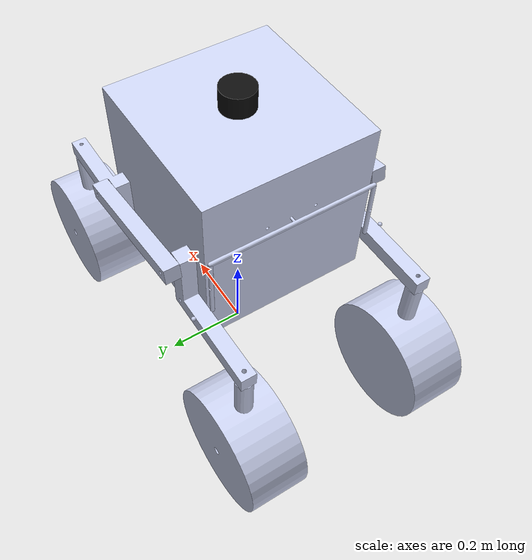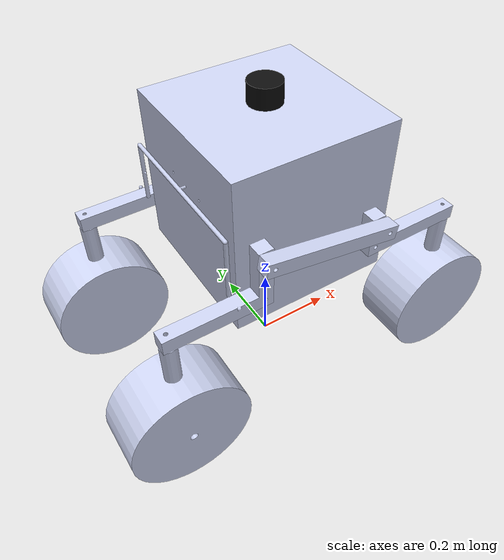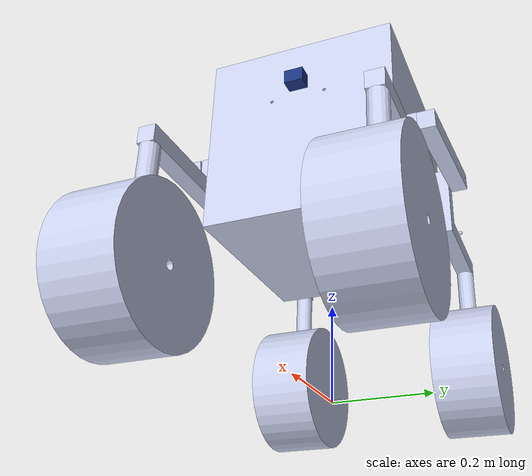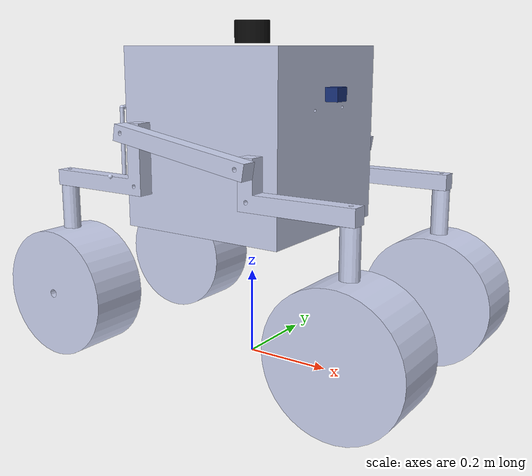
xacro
<?xml version="1.0"?>
<robot name="rover" xmlns:xacro="http://www.ros.org/wiki/xacro">

  <xacro:arg name="sim"            default="harmonic"/>
  <xacro:arg name="mass_scale"     default="1.0"/>
  <xacro:arg name="mesh_collision" default="false"/>
  <xacro:arg name="ros2_control"   default="true"/>
  <xacro:arg name="controllers_file" default="$(find rover_gazebo)/config/controllers.yaml"/>
  <xacro:arg name="suspension"     default="torque"/>

  <xacro:property name="sim"            value="$(arg sim)"/>
  <xacro:property name="mass_scale"     value="$(arg mass_scale)"/>
  <xacro:property name="mesh_collision" value="$(arg mesh_collision)"/>
  <xacro:property name="suspension"     value="$(arg suspension)"/>

  <!-- Mesh URI.                                                         -->
  <!-- Absolute, and deliberately not package://. This model is spawned   -->
  <!-- from a string, not a file: rover_sim.launch.py runs                -->
  <!-- 'ros_gz_sim create -topic robot_description'. sdformat rewrites    -->
  <!-- package:// to model:// and then has no file to resolve it against, -->
  <!-- so the raw model:// URI reaches the renderer, which silently draws -->
  <!-- nothing. See doc/GAZEBO_VISUALS.md.                                -->
  <!-- An absolute file:// URI needs no resolution at all. xacro expands  -->
  <!-- $(find rover_gazebo) on the machine that launches, so this stays   -->
  <!-- correct per machine. resource_retriever reads it, so RViz is       -->
  <!-- unaffected.                                                       -->
  <xacro:property name="mesh_uri" value="file://$(find rover_gazebo)/meshes"/>

  <!-- Frame fix.                                                        -->
  <!-- The exported chassis frame has X pointing backwards, Y up and Z    -->
  <!-- to the left. ROS wants X forward, Y left, Z up. The rotation that  -->
  <!-- takes one to the other is a quarter turn about X followed by a     -->
  <!-- half turn about Z, which is the rpy on chassis_mount below.        -->
  <!-- Both joints are fixed, so sdformat folds all three links into one  -->
  <!-- body and the simulation pays nothing for them.                    -->
  <link name="base_footprint"/>
  <link name="base_link"/>

  <joint name="base_joint" type="fixed">
    <parent link="base_footprint"/>
    <child  link="base_link"/>
    <!-- ground sits 0.7225 m below the chassis origin; see tools/derive_ratios.py -->
    <origin xyz="0 0 0.7225" rpy="0 0 0"/>
  </joint>

  <joint name="chassis_mount" type="fixed">
    <parent link="base_link"/>
    <child  link="chassis_link"/>
    <origin xyz="0 0 0" rpy="1.5707963267948966 0 3.141592653589793"/>
  </joint>

  <xacro:include filename="$(find rover_gazebo)/urdf/rover_body.xacro"/>
  <xacro:include filename="$(find rover_gazebo)/urdf/rover_gazebo.xacro"/>
  <xacro:include filename="$(find rover_gazebo)/urdf/rover_sensors.xacro"/>

  <xacro:if value="${'$(arg ros2_control)' in ['true', 'True', '1']}">
    <xacro:include filename="$(find rover_gazebo)/urdf/rover_ros2_control.xacro"/>
  </xacro:if>

</robot>

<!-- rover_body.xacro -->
<robot xmlns:xacro="http://www.ros.org/wiki/xacro">

  <material name="rover_grey"><color rgba="0.792 0.820 0.933 1"/></material>

  <link name="chassis_link">
    <inertial>
      <origin xyz="-8.627494554e-07 -0.1999353544 7.395065562e-07" rpy="0 0 0"/>
      <mass value="${63.9060978 * mass_scale}"/>
      <inertia
        ixx="${1.704947106 * mass_scale}" ixy="${3.635342536e-06 * mass_scale}" ixz="${-4.07726366e-11 * mass_scale}"
        iyy="${1.703889861 * mass_scale}" iyz="${-3.271519518e-06 * mass_scale}" izz="${1.704053183 * mass_scale}"/>
    </inertial>
    <visual>
      <origin xyz="0 0 0" rpy="0 0 0"/>
      <geometry><mesh filename="${mesh_uri}/base_link.STL"/></geometry>
      <material name="rover_grey"/>
    </visual>
    <!-- the chassis STL is exactly a 0.4 m cube -->
    <collision>
      <origin xyz="0 -0.2 0" rpy="0 0 0"/>
      <geometry><box size="0.4 0.4 0.4"/></geometry>
    </collision>
  </link>

  <link name="FLS">
    <inertial>
      <origin xyz="-0.0859227859 0.009426366769 -0.018" rpy="0 0 0"/>
      <mass value="${0.4214786598 * mass_scale}"/>
      <inertia
        ixx="${0.0003233431638 * mass_scale}" ixy="${-0.000423851259 * mass_scale}" ixz="${1.103954353e-19 * mass_scale}"
        iyy="${0.002771800705 * mass_scale}" iyz="${-1.512944701e-19 * mass_scale}" izz="${0.003003529096 * mass_scale}"/>
    </inertial>
    <visual>
      <origin xyz="0 0 0" rpy="0 0 0"/>
      <geometry><mesh filename="${mesh_uri}/FLS.STL"/></geometry>
      <material name="rover_grey"/>
    </visual>
    <xacro:if value="${mesh_collision}">
      <collision>
        <origin xyz="0 0 0" rpy="0 0 0"/>
        <geometry><mesh filename="${mesh_uri}/FLS.STL"/></geometry>
      </collision>
    </xacro:if>
  </link>

  <link name="LCON">
    <inertial>
      <origin xyz="0.1508620673 -0.002025865415 -0.018" rpy="0 0 0"/>
      <mass value="${0.4372531332 * mass_scale}"/>
      <inertia
        ixx="${9.499914747e-05 * mass_scale}" ixy="${1.145599903e-08 * mass_scale}" ixz="${4.322377573e-19 * mass_scale}"
        iyy="${0.004227462166 * mass_scale}" iyz="${-3.228922842e-20 * mass_scale}" izz="${0.004228014637 * mass_scale}"/>
    </inertial>
    <visual>
      <origin xyz="0 0 0" rpy="0 0 0"/>
      <geometry><mesh filename="${mesh_uri}/LCON.STL"/></geometry>
      <material name="rover_grey"/>
    </visual>
  </link>

  <link name="FLE">
    <inertial>
      <origin xyz="7.113224887e-08 -0.1325250852 0.0001793243352" rpy="0 0 0"/>
      <mass value="${0.3276916427 * mass_scale}"/>
      <inertia
        ixx="${0.001918273414 * mass_scale}" ixy="${-9.59391541e-11 * mass_scale}" ixz="${7.987115345e-10 * mass_scale}"
        iyy="${6.631333975e-05 * mass_scale}" iyz="${7.07445123e-06 * mass_scale}" izz="${0.001918894352 * mass_scale}"/>
    </inertial>
    <visual>
      <origin xyz="0 0 0" rpy="0 0 0"/>
      <geometry><mesh filename="${mesh_uri}/FLE.STL"/></geometry>
      <material name="rover_grey"/>
    </visual>
    <xacro:if value="${mesh_collision}">
      <collision>
        <origin xyz="0 0 0" rpy="0 0 0"/>
        <geometry><mesh filename="${mesh_uri}/FLE.STL"/></geometry>
      </collision>
    </xacro:if>
  </link>

  <link name="FLD">
    <inertial>
      <origin xyz="4.996003611e-16 -2.504940699e-15 0.069922049" rpy="0 0 0"/>
      <mass value="${9.87402571 * mass_scale}"/>
      <inertia
        ixx="${0.07179206038 * mass_scale}" ixy="${-6.532318089e-18 * mass_scale}" ixz="${1.296290942e-15 * mass_scale}"
        iyy="${0.07179206038 * mass_scale}" iyz="${4.304736691e-15 * mass_scale}" izz="${0.1113290901 * mass_scale}"/>
    </inertial>
    <visual>
      <origin xyz="0 0 0" rpy="0 0 0"/>
      <geometry><mesh filename="${mesh_uri}/FLD.STL"/></geometry>
      <material name="rover_grey"/>
    </visual>
    <!-- cylinder matches the STL to a tenth of a millimetre -->
    <collision>
      <origin xyz="0 0 0.07" rpy="0 0 0"/>
      <geometry><cylinder radius="0.14985" length="0.14"/></geometry>
    </collision>
  </link>

  <link name="FRS">
    <inertial>
      <origin xyz="-0.0859227859 0.009426366769 0.018" rpy="0 0 0"/>
      <mass value="${0.4214786598 * mass_scale}"/>
      <inertia
        ixx="${0.0003233431638 * mass_scale}" ixy="${-0.000423851259 * mass_scale}" ixz="${-5.627199484e-20 * mass_scale}"
        iyy="${0.002771800705 * mass_scale}" iyz="${1.014217062e-20 * mass_scale}" izz="${0.003003529096 * mass_scale}"/>
    </inertial>
    <visual>
      <origin xyz="0 0 0" rpy="0 0 0"/>
      <geometry><mesh filename="${mesh_uri}/FRS.STL"/></geometry>
      <material name="rover_grey"/>
    </visual>
    <xacro:if value="${mesh_collision}">
      <collision>
        <origin xyz="0 0 0" rpy="0 0 0"/>
        <geometry><mesh filename="${mesh_uri}/FRS.STL"/></geometry>
      </collision>
    </xacro:if>
  </link>

  <link name="RCON">
    <inertial>
      <origin xyz="0.1454244276 -0.0008623413942 0.018" rpy="0 0 0"/>
      <mass value="${0.4372531332 * mass_scale}"/>
      <inertia
        ixx="${9.499914747e-05 * mass_scale}" ixy="${1.145599903e-08 * mass_scale}" ixz="${-7.33489322e-20 * mass_scale}"
        iyy="${0.004227462166 * mass_scale}" iyz="${1.410120969e-20 * mass_scale}" izz="${0.004228014637 * mass_scale}"/>
    </inertial>
    <visual>
      <origin xyz="0 0 0" rpy="0 0 0"/>
      <geometry><mesh filename="${mesh_uri}/RCON.STL"/></geometry>
      <material name="rover_grey"/>
    </visual>
  </link>

  <link name="FRE">
    <inertial>
      <origin xyz="7.113224304e-08 -0.1325250852 0.0001793243351" rpy="0 0 0"/>
      <mass value="${0.3276916427 * mass_scale}"/>
      <inertia
        ixx="${0.001918273414 * mass_scale}" ixy="${-9.593915455e-11 * mass_scale}" ixz="${7.987115344e-10 * mass_scale}"
        iyy="${6.631333975e-05 * mass_scale}" iyz="${7.07445123e-06 * mass_scale}" izz="${0.001918894352 * mass_scale}"/>
    </inertial>
    <visual>
      <origin xyz="0 0 0" rpy="0 0 0"/>
      <geometry><mesh filename="${mesh_uri}/FRE.STL"/></geometry>
      <material name="rover_grey"/>
    </visual>
    <xacro:if value="${mesh_collision}">
      <collision>
        <origin xyz="0 0 0" rpy="0 0 0"/>
        <geometry><mesh filename="${mesh_uri}/FRE.STL"/></geometry>
      </collision>
    </xacro:if>
  </link>

  <link name="FRD">
    <inertial>
      <origin xyz="-1.165734176e-15 -2.498001805e-16 -0.070077951" rpy="0 0 0"/>
      <mass value="${9.87402571 * mass_scale}"/>
      <inertia
        ixx="${0.07179206038 * mass_scale}" ixy="${-4.065758147e-18 * mass_scale}" ixz="${1.006932249e-17 * mass_scale}"
        iyy="${0.07179206038 * mass_scale}" iyz="${-9.058657689e-18 * mass_scale}" izz="${0.1113290901 * mass_scale}"/>
    </inertial>
    <visual>
      <origin xyz="0 0 0" rpy="0 0 0"/>
      <geometry><mesh filename="${mesh_uri}/FRD.STL"/></geometry>
      <material name="rover_grey"/>
    </visual>
    <!-- cylinder matches the STL to a tenth of a millimetre -->
    <collision>
      <origin xyz="0 0 -0.07" rpy="0 0 0"/>
      <geometry><cylinder radius="0.14985" length="0.14"/></geometry>
    </collision>
  </link>

  <link name="BRS">
    <inertial>
      <origin xyz="0.07456317753 0.0228500876 0.018" rpy="0 0 0"/>
      <mass value="${0.4884257566 * mass_scale}"/>
      <inertia
        ixx="${0.0009261434081 * mass_scale}" ixy="${0.000928715333 * mass_scale}" ixz="${-1.317472518e-19 * mass_scale}"
        iyy="${0.003250647391 * mass_scale}" iyz="${-8.723410087e-20 * mass_scale}" izz="${0.004069923468 * mass_scale}"/>
    </inertial>
    <visual>
      <origin xyz="0 0 0" rpy="0 0 0"/>
      <geometry><mesh filename="${mesh_uri}/BRS.STL"/></geometry>
      <material name="rover_grey"/>
    </visual>
    <xacro:if value="${mesh_collision}">
      <collision>
        <origin xyz="0 0 0" rpy="0 0 0"/>
        <geometry><mesh filename="${mesh_uri}/BRS.STL"/></geometry>
      </collision>
    </xacro:if>
  </link>

  <link name="BRE">
    <inertial>
      <origin xyz="0.001160676851 -0.1222638264 -0.0001793158804" rpy="0 0 0"/>
      <mass value="${0.3276918076 * mass_scale}"/>
      <inertia
        ixx="${0.001918274063 * mass_scale}" ixy="${1.004657443e-10 * mass_scale}" ixz="${8.191796495e-10 * mass_scale}"
        iyy="${6.631336088e-05 * mass_scale}" iyz="${-7.074461111e-06 * mass_scale}" izz="${0.001918894927 * mass_scale}"/>
    </inertial>
    <visual>
      <origin xyz="0 0 0" rpy="0 0 0"/>
      <geometry><mesh filename="${mesh_uri}/BRE.STL"/></geometry>
      <material name="rover_grey"/>
    </visual>
    <xacro:if value="${mesh_collision}">
      <collision>
        <origin xyz="0 0 0" rpy="0 0 0"/>
        <geometry><mesh filename="${mesh_uri}/BRE.STL"/></geometry>
      </collision>
    </xacro:if>
  </link>

  <link name="BRD">
    <inertial>
      <origin xyz="-5.551115123e-17 3.469446952e-17 -0.069922049" rpy="0 0 0"/>
      <mass value="${9.87402571 * mass_scale}"/>
      <inertia
        ixx="${0.07179206038 * mass_scale}" ixy="${-1.552219612e-17 * mass_scale}" ixz="${2.299598583e-17 * mass_scale}"
        iyy="${0.07179206038 * mass_scale}" iyz="${-1.093076535e-17 * mass_scale}" izz="${0.1113290901 * mass_scale}"/>
    </inertial>
    <visual>
      <origin xyz="0 0 0" rpy="0 0 0"/>
      <geometry><mesh filename="${mesh_uri}/BRD.STL"/></geometry>
      <material name="rover_grey"/>
    </visual>
    <!-- cylinder matches the STL to a tenth of a millimetre -->
    <collision>
      <origin xyz="0 0 -0.07" rpy="0 0 0"/>
      <geometry><cylinder radius="0.14985" length="0.14"/></geometry>
    </collision>
  </link>

  <link name="Rdiffcon2">
    <inertial>
      <origin xyz="-1.221245327e-15 4.773959006e-15 -6.661338148e-16" rpy="0 0 0"/>
      <mass value="${0.0002680825731 * mass_scale}"/>
      <inertia
        ixx="${1.715728468e-09 * mass_scale}" ixy="${0 * mass_scale}" ixz="${0 * mass_scale}"
        iyy="${1.715728468e-09 * mass_scale}" iyz="${0 * mass_scale}" izz="${1.715728468e-09 * mass_scale}"/>
    </inertial>
    <visual>
      <origin xyz="0 0 0" rpy="0 0 0"/>
      <geometry><mesh filename="${mesh_uri}/Rdiffcon2.STL"/></geometry>
      <material name="rover_grey"/>
    </visual>
  </link>

  <link name="BLS">
    <inertial>
      <origin xyz="0.07456317753 0.0228500876 -0.018" rpy="0 0 0"/>
      <mass value="${0.4884257566 * mass_scale}"/>
      <inertia
        ixx="${0.0009261434081 * mass_scale}" ixy="${0.000928715333 * mass_scale}" ixz="${-1.064425733e-18 * mass_scale}"
        iyy="${0.003250647391 * mass_scale}" iyz="${7.982026134e-19 * mass_scale}" izz="${0.004069923468 * mass_scale}"/>
    </inertial>
    <visual>
      <origin xyz="0 0 0" rpy="0 0 0"/>
      <geometry><mesh filename="${mesh_uri}/BLS.STL"/></geometry>
      <material name="rover_grey"/>
    </visual>
    <xacro:if value="${mesh_collision}">
      <collision>
        <origin xyz="0 0 0" rpy="0 0 0"/>
        <geometry><mesh filename="${mesh_uri}/BLS.STL"/></geometry>
      </collision>
    </xacro:if>
  </link>

  <link name="BLE">
    <inertial>
      <origin xyz="7.378163841e-08 -0.1325250862 0.0001793158804" rpy="0 0 0"/>
      <mass value="${0.3276918076 * mass_scale}"/>
      <inertia
        ixx="${0.001918274063 * mass_scale}" ixy="${-1.004657443e-10 * mass_scale}" ixz="${8.191796495e-10 * mass_scale}"
        iyy="${6.631336088e-05 * mass_scale}" iyz="${7.074461111e-06 * mass_scale}" izz="${0.001918894927 * mass_scale}"/>
    </inertial>
    <visual>
      <origin xyz="0 0 0" rpy="0 0 0"/>
      <geometry><mesh filename="${mesh_uri}/BLE.STL"/></geometry>
      <material name="rover_grey"/>
    </visual>
    <xacro:if value="${mesh_collision}">
      <collision>
        <origin xyz="0 0 0" rpy="0 0 0"/>
        <geometry><mesh filename="${mesh_uri}/BLE.STL"/></geometry>
      </collision>
    </xacro:if>
  </link>

  <link name="BLD">
    <inertial>
      <origin xyz="1.110223025e-16 3.469446952e-17 -0.070077951" rpy="0 0 0"/>
      <mass value="${9.87402571 * mass_scale}"/>
      <inertia
        ixx="${0.07179206038 * mass_scale}" ixy="${-1.094305963e-17 * mass_scale}" ixz="${-4.952229678e-18 * mass_scale}"
        iyy="${0.07179206038 * mass_scale}" iyz="${-8.072830015e-18 * mass_scale}" izz="${0.1113290901 * mass_scale}"/>
    </inertial>
    <visual>
      <origin xyz="0 0 0" rpy="0 0 0"/>
      <geometry><mesh filename="${mesh_uri}/BLD.STL"/></geometry>
      <material name="rover_grey"/>
    </visual>
    <!-- cylinder matches the STL to a tenth of a millimetre -->
    <collision>
      <origin xyz="0 0 -0.07" rpy="0 0 0"/>
      <geometry><cylinder radius="0.14985" length="0.14"/></geometry>
    </collision>
  </link>

  <link name="Ldiffcon2">
    <inertial>
      <origin xyz="1.387778781e-15 -8.826273046e-15 1.33226763e-15" rpy="0 0 0"/>
      <mass value="${0.0002680825731 * mass_scale}"/>
      <inertia
        ixx="${1.715728468e-09 * mass_scale}" ixy="${0 * mass_scale}" ixz="${0 * mass_scale}"
        iyy="${1.715728468e-09 * mass_scale}" iyz="${0 * mass_scale}" izz="${1.715728468e-09 * mass_scale}"/>
    </inertial>
    <visual>
      <origin xyz="0 0 0" rpy="0 0 0"/>
      <geometry><mesh filename="${mesh_uri}/Ldiffcon2.STL"/></geometry>
      <material name="rover_grey"/>
    </visual>
  </link>

  <link name="Differential">
    <inertial>
      <origin xyz="0.02571087449 7.599071783e-08 2.418902175e-06" rpy="0 0 0"/>
      <mass value="${0.03191052872 * mass_scale}"/>
      <inertia
        ixx="${0.000414937281 * mass_scale}" ixy="${1.869102303e-11 * mass_scale}" ixz="${5.471722252e-10 * mass_scale}"
        iyy="${0.0004150977866 * mass_scale}" iyz="${1.903553792e-10 * mass_scale}" izz="${5.533383116e-07 * mass_scale}"/>
    </inertial>
    <visual>
      <origin xyz="0 0 0" rpy="0 0 0"/>
      <geometry><mesh filename="${mesh_uri}/Differential.STL"/></geometry>
      <material name="rover_grey"/>
    </visual>
  </link>

  <link name="Ldiff">
    <inertial>
      <origin xyz="-2.054350023e-10 -0.07499917917 -1.477769462e-09" rpy="0 0 0"/>
      <mass value="${0.01098839702 * mass_scale}"/>
      <inertia
        ixx="${1.935752897e-05 * mass_scale}" ixy="${-1.993828651e-13 * mass_scale}" ixz="${3.3331122e-10 * mass_scale}"
        iyy="${1.394038206e-07 * mass_scale}" iyz="${1.112036012e-13 * mass_scale}" izz="${1.935882846e-05 * mass_scale}"/>
    </inertial>
    <visual>
      <origin xyz="0 0 0" rpy="0 0 0"/>
      <geometry><mesh filename="${mesh_uri}/Ldiff.STL"/></geometry>
      <material name="rover_grey"/>
    </visual>
  </link>

  <link name="Ldiffcon">
    <inertial>
      <origin xyz="1.387778781e-15 0.15 1.998401444e-15" rpy="0 0 0"/>
      <mass value="${0.0002680825731 * mass_scale}"/>
      <inertia
        ixx="${1.715728468e-09 * mass_scale}" ixy="${0 * mass_scale}" ixz="${0 * mass_scale}"
        iyy="${1.715728468e-09 * mass_scale}" iyz="${0 * mass_scale}" izz="${1.715728468e-09 * mass_scale}"/>
    </inertial>
    <visual>
      <origin xyz="0 0 0" rpy="0 0 0"/>
      <geometry><mesh filename="${mesh_uri}/Ldiffcon.STL"/></geometry>
      <material name="rover_grey"/>
    </visual>
  </link>

  <link name="Rdiff">
    <inertial>
      <origin xyz="-1.483619505e-09 -0.07500082083 1.576843101e-10" rpy="0 0 0"/>
      <mass value="${0.01098839702 * mass_scale}"/>
      <inertia
        ixx="${1.93589089e-05 * mass_scale}" ixy="${-5.973782545e-14 * mass_scale}" ixz="${-1.02595394e-11 * mass_scale}"
        iyy="${1.394038206e-07 * mass_scale}" iyz="${2.203432331e-13 * mass_scale}" izz="${1.935744854e-05 * mass_scale}"/>
    </inertial>
    <visual>
      <origin xyz="0 0 0" rpy="0 0 0"/>
      <geometry><mesh filename="${mesh_uri}/Rdiff.STL"/></geometry>
      <material name="rover_grey"/>
    </visual>
  </link>

  <link name="Rdiffcon">
    <inertial>
      <origin xyz="5.551115123e-17 5.551115123e-17 2.220446049e-16" rpy="0 0 0"/>
      <mass value="${0.0002680825731 * mass_scale}"/>
      <inertia
        ixx="${1.715728468e-09 * mass_scale}" ixy="${0 * mass_scale}" ixz="${0 * mass_scale}"
        iyy="${1.715728468e-09 * mass_scale}" iyz="${0 * mass_scale}" izz="${1.715728468e-09 * mass_scale}"/>
    </inertial>
    <visual>
      <origin xyz="0 0 0" rpy="0 0 0"/>
      <geometry><mesh filename="${mesh_uri}/Rdiffcon.STL"/></geometry>
      <material name="rover_grey"/>
    </visual>
  </link>

  <!-- the one free suspension coordinate; everything else mimics it -->
  <joint name="FLS_joint" type="revolute">
      <origin xyz="-0.15 -0.3 0.236" rpy="0 0 -0.00563357703574"/>
      <parent link="chassis_link"/>
      <child link="FLS"/>
      <axis xyz="0 0 1"/>
      <limit lower="-0.45" upper="0.45" effort="5000.0" velocity="20.0"/>
      <dynamics damping="5.0" friction="0.5"/>
  </joint>

  <!-- decorative; fixed so sdformat folds it into its parent. Nothing
       drives it once the loop it closed is replaced by a torque
       coupling on the rockers themselves. -->
  <joint name="LCON_joint" type="fixed">
      <origin xyz="0 0.06988 0.036" rpy="0 0 0.170998923196"/>
      <parent link="FLS"/>
      <child link="LCON"/>
  </joint>

  <joint name="FLE_joint" type="revolute">
      <origin xyz="-0.22188 -0.02 -0.018" rpy="0 0 0"/>
      <parent link="FLS"/>
      <child link="FLE"/>
      <axis xyz="0 -1 0"/>
      <limit lower="-1.75" upper="1.75" effort="500.0" velocity="20.0"/>
      <dynamics damping="1.0" friction="0.5"/>
  </joint>

  <!-- drive; continuous, the export's effort=0 would lock it solid -->
  <joint name="FLD_joint" type="continuous">
      <origin xyz="0 -0.25263 -0.07" rpy="0 0 0"/>
      <parent link="FLE"/>
      <child link="FLD"/>
      <axis xyz="0 0 1"/>
      <limit effort="500.0" velocity="30.0"/>
      <dynamics damping="0.05" friction="0.1"/>
  </joint>

  <!-- follower: FRS = -1.00774 x FLS, held there by rocker_coupling_node -->
  <joint name="FRS_joint" type="revolute">
      <origin xyz="-0.15 -0.3 -0.236" rpy="0 0 -0.00563357703571"/>
      <parent link="chassis_link"/>
      <child link="FRS"/>
      <axis xyz="0 0 1"/>
      <limit lower="-0.6" upper="0.6" effort="5000.0" velocity="20.0"/>
      <dynamics damping="5.0" friction="0.5"/>
      <xacro:if value="${suspension == 'mimic'}">
        <mimic joint="FLS_joint" multiplier="-1.007737" offset="0.0"/>
      </xacro:if>
  </joint>

  <!-- decorative; fixed so sdformat folds it into its parent. Nothing
       drives it once the loop it closed is replaced by a torque
       coupling on the rockers themselves. -->
  <joint name="RCON_joint" type="fixed">
      <origin xyz="0.005556326342 0.06965875134 -0.036" rpy="0 0 0.170998923196"/>
      <parent link="FRS"/>
      <child link="RCON"/>
  </joint>

  <joint name="FRE_joint" type="revolute">
      <origin xyz="-0.22188 -0.02 0.018" rpy="0 0 0"/>
      <parent link="FRS"/>
      <child link="FRE"/>
      <axis xyz="0 -1 0"/>
      <limit lower="-1.75" upper="1.75" effort="500.0" velocity="20.0"/>
      <dynamics damping="1.0" friction="0.5"/>
  </joint>

  <!-- drive; continuous, the export's effort=0 would lock it solid -->
  <joint name="FRD_joint" type="continuous">
      <origin xyz="0 -0.25263 0.07" rpy="0 0 0"/>
      <parent link="FRE"/>
      <child link="FRD"/>
      <axis xyz="0 0 1"/>
      <limit effort="500.0" velocity="30.0"/>
      <dynamics damping="0.05" friction="0.1"/>
  </joint>

  <!-- follower: BRS = +0.57716 x FLS, held there by rocker_coupling_node -->
  <joint name="BRS_joint" type="revolute">
      <origin xyz="0.15 -0.3 -0.236" rpy="0 0 0"/>
      <parent link="chassis_link"/>
      <child link="BRS"/>
      <axis xyz="0 0 -1"/>
      <limit lower="-0.6" upper="0.6" effort="5000.0" velocity="20.0"/>
      <dynamics damping="5.0" friction="0.5"/>
      <!-- suspension:=mimic only; see FRS_joint's mimic above. -->
      <xacro:if value="${suspension == 'mimic'}">
        <mimic joint="FLS_joint" multiplier="0.577165" offset="0.0"/>
      </xacro:if>
  </joint>

  <joint name="BRE_joint" type="revolute">
      <origin xyz="0.2215792494 -0.03026125989 0.018" rpy="0 0 0"/>
      <parent link="BRS"/>
      <child link="BRE"/>
      <axis xyz="0 -1 0"/>
      <limit lower="-1.75" upper="1.75" effort="500.0" velocity="20.0"/>
      <dynamics damping="1.0" friction="0.5"/>
  </joint>

  <!-- drive; continuous, the export's effort=0 would lock it solid -->
  <joint name="BRD_joint" type="continuous">
      <origin xyz="0.001160750633 -0.2423687401 0.07" rpy="0 0 0"/>
      <parent link="BRE"/>
      <child link="BRD"/>
      <axis xyz="0 0 -1"/>
      <limit effort="500.0" velocity="30.0"/>
      <dynamics damping="0.05" friction="0.1"/>
  </joint>

  <!-- decorative; fixed so sdformat folds it into its parent -->
  <joint name="Rdiffcon2_joint" type="fixed">
      <origin xyz="0.066 0.016 0.04" rpy="0 0 0"/>
      <parent link="BRS"/>
      <child link="Rdiffcon2"/>
  </joint>

  <!-- follower: BLS = -0.57716 x FLS, held there by rocker_coupling_node -->
  <joint name="BLS_joint" type="revolute">
      <origin xyz="0.15 -0.3 0.236" rpy="0 0 0"/>
      <parent link="chassis_link"/>
      <child link="BLS"/>
      <axis xyz="0 0 -1"/>
      <limit lower="-0.6" upper="0.6" effort="5000.0" velocity="20.0"/>
      <dynamics damping="5.0" friction="0.5"/>
      <!-- suspension:=mimic only; see FRS_joint's mimic above. -->
      <xacro:if value="${suspension == 'mimic'}">
        <mimic joint="FLS_joint" multiplier="-0.577165" offset="0.0"/>
      </xacro:if>
  </joint>

  <joint name="BLE_joint" type="revolute">
      <origin xyz="0.22274 -0.02 -0.018" rpy="0 0 0"/>
      <parent link="BLS"/>
      <child link="BLE"/>
      <axis xyz="0 -1 0"/>
      <limit lower="-1.75" upper="1.75" effort="500.0" velocity="20.0"/>
      <dynamics damping="1.0" friction="0.5"/>
  </joint>

  <!-- drive; continuous, the export's effort=0 would lock it solid -->
  <joint name="BLD_joint" type="continuous">
      <origin xyz="0 -0.25263 0.07" rpy="0 0 0"/>
      <parent link="BLE"/>
      <child link="BLD"/>
      <axis xyz="0 0 1"/>
      <limit effort="500.0" velocity="30.0"/>
      <dynamics damping="0.05" friction="0.1"/>
  </joint>

  <!-- decorative; fixed so sdformat folds it into its parent -->
  <joint name="Ldiffcon2_joint" type="fixed">
      <origin xyz="0.066 0.016 -0.04" rpy="0 0 0"/>
      <parent link="BLS"/>
      <child link="Ldiffcon2"/>
  </joint>

  <!-- decorative; fixed so sdformat folds it into its parent. Nothing
       drives it once the loop it closed is replaced by a torque
       coupling on the rockers themselves. -->
  <joint name="Differential_joint" type="fixed">
      <origin xyz="0.19 -0.134 0" rpy="0 0 0"/>
      <parent link="chassis_link"/>
      <child link="Differential"/>
  </joint>

  <!-- decorative; fixed so sdformat folds it into its parent -->
  <joint name="Ldiff_joint" type="fixed">
      <origin xyz="0.026 0 0.196" rpy="0 0 0"/>
      <parent link="Differential"/>
      <child link="Ldiff"/>
  </joint>

  <!-- decorative; fixed so sdformat folds it into its parent -->
  <joint name="Ldiffcon_joint" type="fixed">
      <origin xyz="0 -0.15 0" rpy="0 0 0"/>
      <parent link="Ldiff"/>
      <child link="Ldiffcon"/>
  </joint>

  <!-- decorative; fixed so sdformat folds it into its parent -->
  <joint name="Rdiff_joint" type="fixed">
      <origin xyz="0.026 0 -0.196" rpy="0 0 0"/>
      <parent link="Differential"/>
      <child link="Rdiff"/>
  </joint>

  <!-- decorative; fixed so sdformat folds it into its parent -->
  <joint name="Rdiffcon_joint" type="fixed">
      <origin xyz="0 0 0" rpy="0 0 0"/>
      <parent link="Rdiff"/>
      <child link="Rdiffcon"/>
  </joint>

</robot>

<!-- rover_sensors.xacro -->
<robot xmlns:xacro="http://www.ros.org/wiki/xacro">

  <xacro:property name="ros_frame" value="1.5708 0 3.14159"/>

  <xacro:arg name="lidar_model" default="$(optenv ROVER_LIDAR_MODEL default)"/>
  <xacro:arg name="lidar_tilt" default="$(optenv ROVER_LIDAR_TILT 0.0)"/>
  <xacro:arg name="lidar_inverted" default="$(optenv ROVER_LIDAR_INVERTED false)"/>
  <xacro:arg name="lidar_xyz" default="$(optenv ROVER_LIDAR_XYZ 0 0 0)"/>
  <xacro:property name="lidar_model" value="$(arg lidar_model)"/>
  <xacro:property name="lidar_tilt" value="$(arg lidar_tilt)"/>
  <xacro:property name="lidar_roll" value="${pi if '$(arg lidar_inverted)'.lower() in ('true', '1') else 0.0}"/>

  <link name="imu_link">
    <inertial>
      <origin xyz="0 0 0" rpy="0 0 0"/>
      <mass value="0.01"/>
      <inertia ixx="1e-06" ixy="0" ixz="0" iyy="1e-06" iyz="0" izz="1e-06"/>
    </inertial>
    <visual>
      <origin xyz="0 0 0" rpy="0 0 0"/>
      <geometry><box size="0.02 0.02 0.02"/></geometry>
      <material name="imu_grey"><color rgba="0.2 0.2 0.2 1"/></material>
    </visual>
  </link>
  <joint name="imu_joint" type="fixed">
    <origin xyz="0 -0.2 0" rpy="${ros_frame}"/>
    <parent link="chassis_link"/>
    <child link="imu_link"/>
  </joint>
  <gazebo reference="imu_link">
    <sensor name="imu_sensor" type="imu">
      <always_on>1</always_on>
      <update_rate>100</update_rate>
      <topic>/imu/data</topic>
      <gz_frame_id>imu_link</gz_frame_id>
      <imu>
        <angular_velocity>
          <x><noise type="gaussian"><mean>0.0</mean><stddev>0.0002</stddev><bias_mean>0.00005</bias_mean><bias_stddev>0.00001</bias_stddev></noise></x>
          <y><noise type="gaussian"><mean>0.0</mean><stddev>0.0002</stddev><bias_mean>0.00005</bias_mean><bias_stddev>0.00001</bias_stddev></noise></y>
          <z><noise type="gaussian"><mean>0.0</mean><stddev>0.0002</stddev><bias_mean>0.00005</bias_mean><bias_stddev>0.00001</bias_stddev></noise></z>
        </angular_velocity>
        <linear_acceleration>
          <x><noise type="gaussian"><mean>0.0</mean><stddev>0.017</stddev><bias_mean>0.005</bias_mean><bias_stddev>0.001</bias_stddev></noise></x>
          <y><noise type="gaussian"><mean>0.0</mean><stddev>0.017</stddev><bias_mean>0.005</bias_mean><bias_stddev>0.001</bias_stddev></noise></y>
          <z><noise type="gaussian"><mean>0.0</mean><stddev>0.017</stddev><bias_mean>0.005</bias_mean><bias_stddev>0.001</bias_stddev></noise></z>
        </linear_acceleration>
      </imu>
    </sensor>
  </gazebo>

  <link name="lidar3d_link">
    <inertial>
      <origin xyz="0 0 0" rpy="0 0 0"/>
      <mass value="0.5"/>
      <inertia ixx="0.0003" ixy="0" ixz="0" iyy="0.0004" iyz="0" izz="0.0003"/>
    </inertial>
    <visual>
      <origin xyz="0 0 0" rpy="0 0 0"/>
      <geometry><cylinder radius="0.04" length="0.05"/></geometry>
      <material name="lidar_black"><color rgba="0.05 0.05 0.05 1"/></material>
    </visual>
  </link>
  <xacro:unless value="${lidar_model == 'l2'}">
  <joint name="lidar3d_joint" type="fixed">
    <origin xyz="0 0.03 0" rpy="${ros_frame}"/>
    <parent link="chassis_link"/>
    <child link="lidar3d_link"/>
  </joint>
  <gazebo reference="lidar3d_link">
    <sensor name="lidar3d" type="gpu_lidar">
      <always_on>1</always_on>
      <update_rate>5</update_rate>
      <topic>/lidar/points</topic>
      <gz_frame_id>lidar3d_link</gz_frame_id>
      <visualize>false</visualize>
      <lidar>
        <scan>
          <horizontal>
            <samples>360</samples>
            <resolution>1</resolution>
            <min_angle>-3.14159</min_angle>
            <max_angle>3.14159</max_angle>
          </horizontal>
          <vertical>
            <samples>16</samples>
            <resolution>1</resolution>
            <min_angle>-0.261799</min_angle>
            <max_angle>0.261799</max_angle>
          </vertical>
        </scan>
        <range>
          <min>0.5</min>
          <max>30.0</max>
          <resolution>0.01</resolution>
        </range>
      </lidar>
    </sensor>
  </gazebo>
  </xacro:unless>

  <xacro:if value="${lidar_model == 'l2'}">
  <!-- The mount frame carries the ROS-convention rotation of the default lidar, so the
       inversion and tilt below are plain roll and pitch in the rover's axes. -->
  <link name="lidar3d_mount"/>
  <joint name="lidar3d_mount_joint" type="fixed">
    <origin xyz="0 0.03 0" rpy="${ros_frame}"/>
    <parent link="chassis_link"/>
    <child link="lidar3d_mount"/>
  </joint>
  <joint name="lidar3d_joint" type="fixed">
    <origin xyz="$(arg lidar_xyz)" rpy="${lidar_roll} ${lidar_tilt} 0"/>
    <parent link="lidar3d_mount"/>
    <child link="lidar3d_link"/>
  </joint>
  <gazebo reference="lidar3d_link">
    <sensor name="lidar3d" type="gpu_lidar">
      <always_on>1</always_on>
      <update_rate>10</update_rate>
      <topic>/lidar/points</topic>
      <gz_frame_id>lidar3d_link</gz_frame_id>
      <visualize>false</visualize>
      <lidar>
        <scan>
          <horizontal>
            <samples>360</samples>
            <resolution>1</resolution>
            <min_angle>-3.14159</min_angle>
            <max_angle>3.14159</max_angle>
          </horizontal>
          <vertical>
            <samples>48</samples>
            <resolution>1</resolution>
            <min_angle>-0.104720</min_angle>
            <max_angle>1.570796</max_angle>
          </vertical>
        </scan>
        <range>
          <min>0.05</min>
          <max>30.0</max>
          <resolution>0.01</resolution>
        </range>
        <noise>
          <type>gaussian</type>
          <mean>0.0</mean>
          <stddev>0.02</stddev>
        </noise>
      </lidar>
    </sensor>
  </gazebo>
  </xacro:if>

  <link name="camera_link">
    <inertial>
      <origin xyz="0 0 0" rpy="0 0 0"/>
      <mass value="0.161"/>
      <inertia ixx="3.4e-05" ixy="0" ixz="0" iyy="4.3e-05" iyz="0" izz="3.4e-05"/>
    </inertial>
    <visual>
      <origin xyz="0 0 0" rpy="0 0 0"/>
      <geometry><box size="0.04 0.04 0.03"/></geometry>
      <material name="camera_blue"><color rgba="0.1 0.2 0.5 1"/></material>
    </visual>
  </link>
  <joint name="camera_joint" type="fixed">
    <origin xyz="-0.21 -0.1 0" rpy="${ros_frame}"/>
    <parent link="chassis_link"/>
    <child link="camera_link"/>
  </joint>
  <link name="camera_optical_frame"/>
  <joint name="camera_optical_joint" type="fixed">
    <origin xyz="0 0 0" rpy="-1.5708 0 -1.5708"/>
    <parent link="camera_link"/>
    <child link="camera_optical_frame"/>
  </joint>
  <gazebo reference="camera_link">
    <sensor name="rgbd_camera" type="rgbd_camera">
      <always_on>1</always_on>
      <update_rate>15</update_rate>
      <topic>/camera</topic>
      <gz_frame_id>camera_optical_frame</gz_frame_id>
      <visualize>false</visualize>
      <camera name="zed2i_front">
        <horizontal_fov>1.5708</horizontal_fov>
        <image>
          <width>640</width>
          <height>360</height>
          <format>R8G8B8</format>
        </image>
        <clip>
          <near>0.3</near>
          <far>20.0</far>
        </clip>
      </camera>
    </sensor>
  </gazebo>

</robot>
